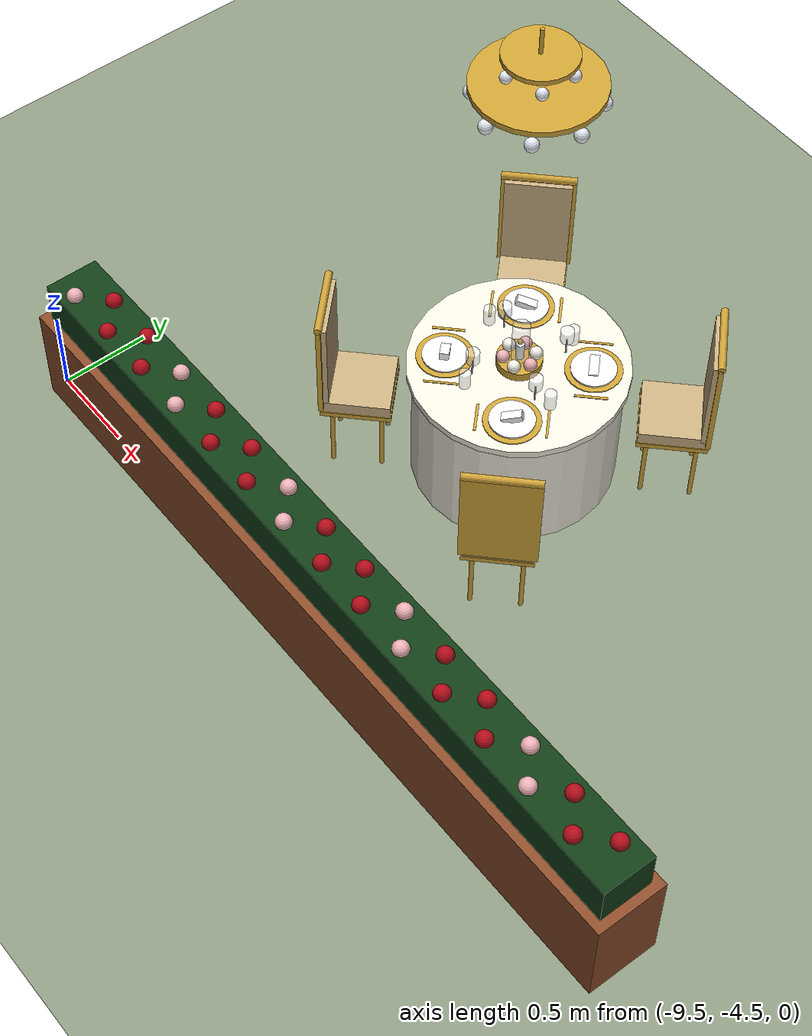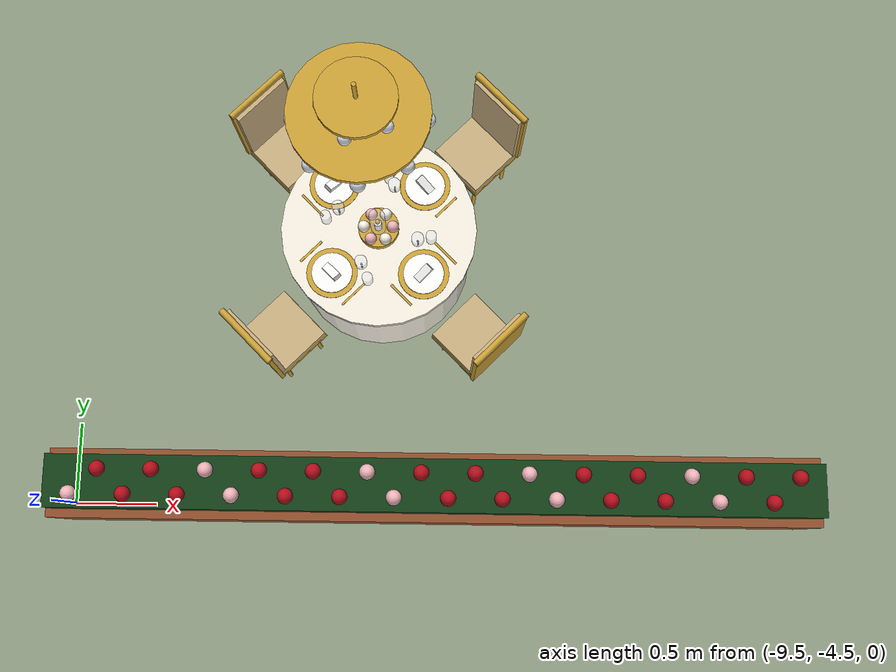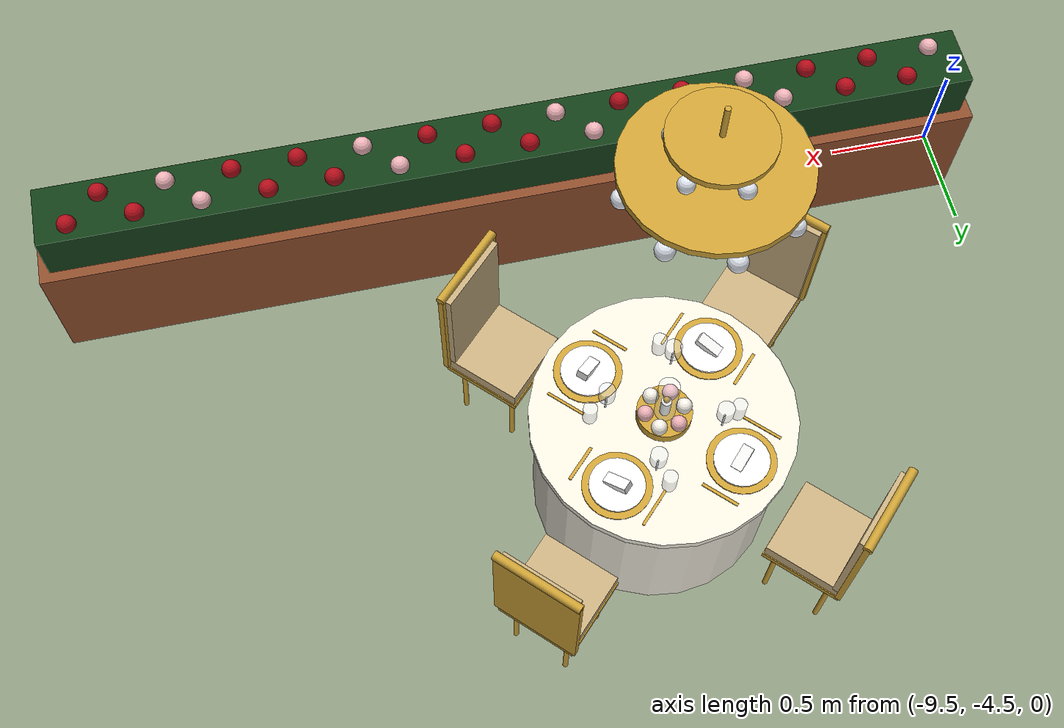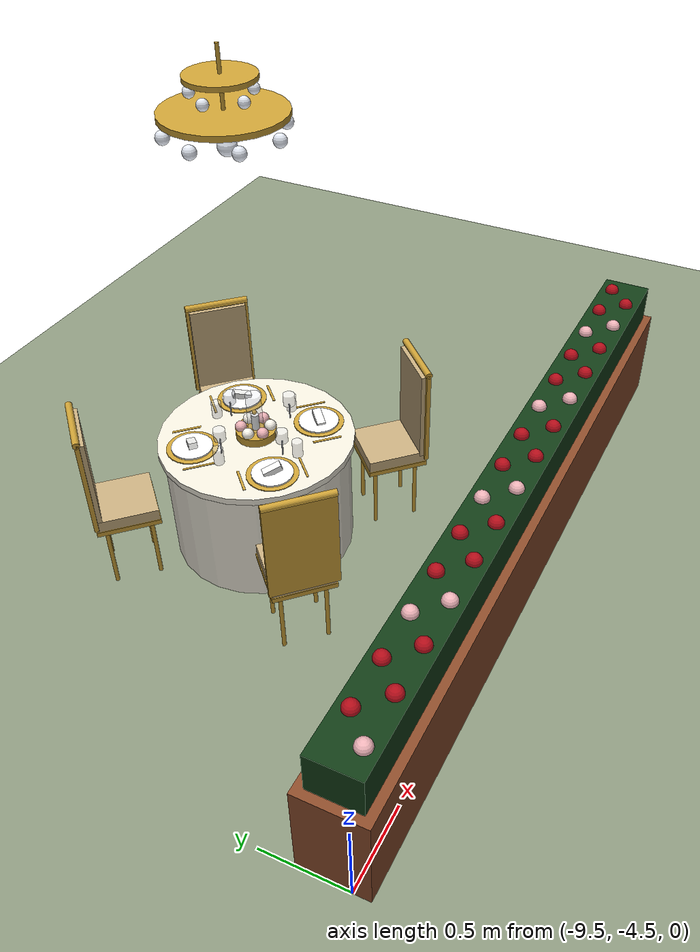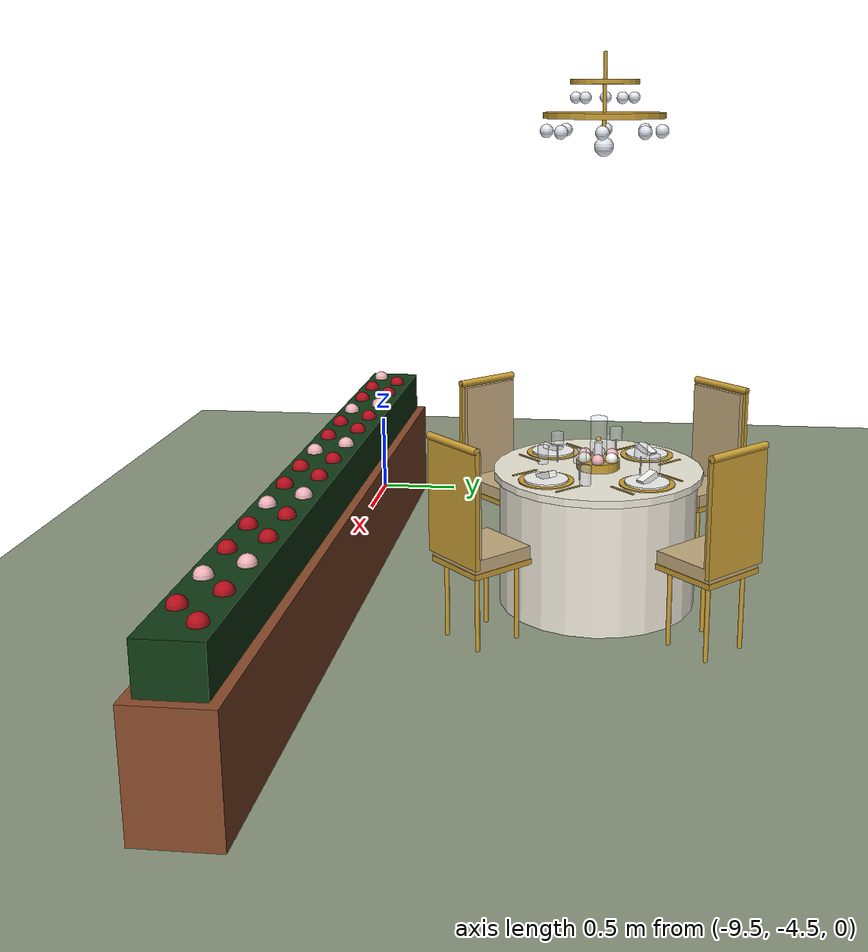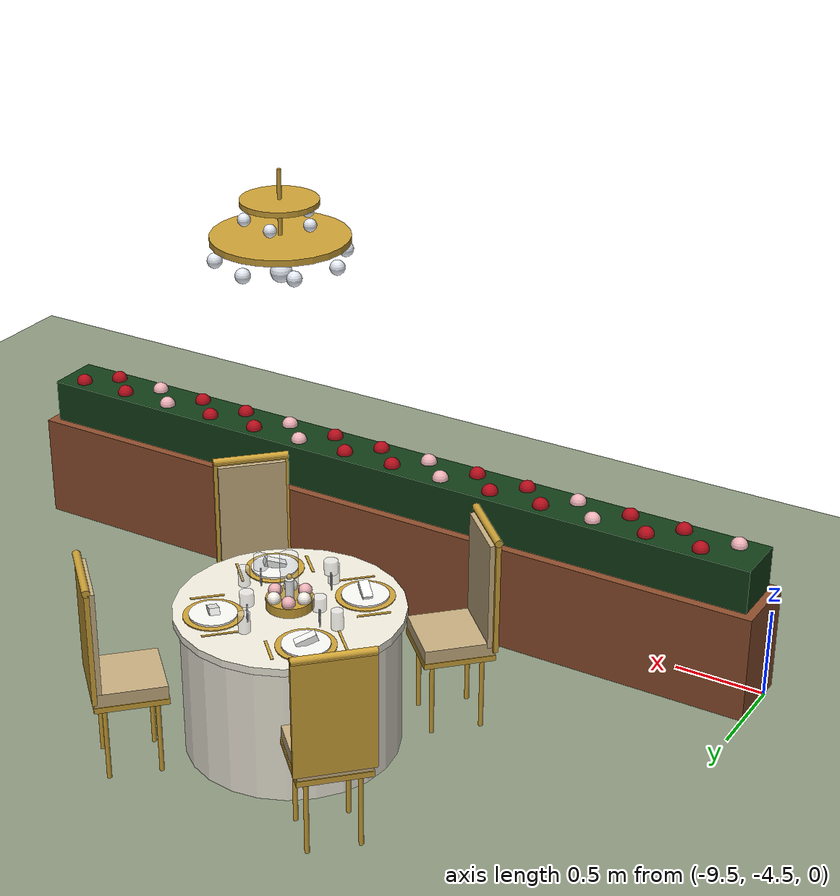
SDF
<sdf version="1.9">
 <world name="dar_tunibot">
  <model name="ground_plane">
   <static>true</static>
   <link name="link">
    <collision name="collision">
     <geometry><plane><normal>0 0 1</normal><size>60 60</size></plane></geometry>
    </collision>
    <visual name="visual">
     <geometry><plane><normal>0 0 1</normal><size>60 60</size></plane></geometry>
     <material><ambient>0.55 0.6 0.5 1</ambient><diffuse>0.55 0.6 0.5 1</diffuse></material>
    </visual>
   </link>
  </model>
  <model name="table_10">
   <static>true</static>
   <pose>-7.6 -2.9 0 0 0 0</pose>
   <link name="link">
    <visual name="cloth_v">
     <pose>0.000 0.000 0.370 0.0000 0.0000 0.0000</pose>
     <geometry><cylinder><radius>0.550</radius><length>0.740</length></cylinder></geometry>
     <material>
      <ambient>0.95 0.93 0.87 1</ambient>
      <diffuse>0.95 0.93 0.87 1</diffuse>
      <specular>0.1 0.1 0.1 1</specular>
     </material>
    </visual>
    <collision name="cloth_c">
     <pose>0.000 0.000 0.370 0.0000 0.0000 0.0000</pose>
     <geometry><cylinder><radius>0.550</radius><length>0.740</length></cylinder></geometry>
    </collision>
    <visual name="drape_v">
     <pose>0.000 0.000 0.750 0.0000 0.0000 0.0000</pose>
     <geometry><cylinder><radius>0.580</radius><length>0.040</length></cylinder></geometry>
     <material>
      <ambient>0.95 0.93 0.87 1</ambient>
      <diffuse>0.95 0.93 0.87 1</diffuse>
      <specular>0.1 0.1 0.1 1</specular>
     </material>
    </visual>
    <visual name="bowl_v">
     <pose>0.000 0.000 0.795 0.0000 0.0000 0.0000</pose>
     <geometry><cylinder><radius>0.120</radius><length>0.050</length></cylinder></geometry>
     <material>
      <ambient>0.8 0.63 0.21 1</ambient>
      <diffuse>0.8 0.63 0.21 1</diffuse>
      <specular>0.1 0.1 0.1 1</specular>
     </material>
    </visual>
    <visual name="bowl_foot_v">
     <pose>0.000 0.000 0.775 0.0000 0.0000 0.0000</pose>
     <geometry><cylinder><radius>0.060</radius><length>0.020</length></cylinder></geometry>
     <material>
      <ambient>0.8 0.63 0.21 1</ambient>
      <diffuse>0.8 0.63 0.21 1</diffuse>
      <specular>0.1 0.1 0.1 1</specular>
     </material>
    </visual>
    <visual name="candle_v">
     <pose>0.000 0.000 0.870 0.0000 0.0000 0.0000</pose>
     <geometry><cylinder><radius>0.022</radius><length>0.100</length></cylinder></geometry>
     <material>
      <ambient>0.98 0.98 0.97 1</ambient>
      <diffuse>0.98 0.98 0.97 1</diffuse>
      <specular>0.1 0.1 0.1 1</specular>
     </material>
    </visual>
    <visual name="flame_v">
     <pose>0.000 0.000 0.935 0.0000 0.0000 0.0000</pose>
     <geometry><sphere><radius>0.014</radius></sphere></geometry>
     <material>
      <ambient>0.8 0.63 0.21 1</ambient>
      <diffuse>0.8 0.63 0.21 1</diffuse>
      <specular>0.1 0.1 0.1 1</specular>
      <emissive>1.0 0.6 0.2 1</emissive>
     </material>
    </visual>
    <visual name="hurricane_v">
     <pose>0.000 0.000 0.940 0.0000 0.0000 0.0000</pose>
     <geometry><cylinder><radius>0.045</radius><length>0.240</length></cylinder></geometry>
     <transparency>0.75</transparency>
     <material>
      <ambient>0.9 0.92 0.96 1</ambient>
      <diffuse>0.9 0.92 0.96 1</diffuse>
      <specular>0.1 0.1 0.1 1</specular>
     </material>
    </visual>
    <visual name="rose0_v">
     <pose>0.085 0.000 0.835 0.0000 0.0000 0.0000</pose>
     <geometry><sphere><radius>0.035</radius></sphere></geometry>
     <material>
      <ambient>0.93 0.7 0.72 1</ambient>
      <diffuse>0.93 0.7 0.72 1</diffuse>
      <specular>0.1 0.1 0.1 1</specular>
     </material>
    </visual>
    <visual name="rose1_v">
     <pose>0.043 0.074 0.835 0.0000 0.0000 0.0000</pose>
     <geometry><sphere><radius>0.035</radius></sphere></geometry>
     <material>
      <ambient>0.97 0.95 0.91 1</ambient>
      <diffuse>0.97 0.95 0.91 1</diffuse>
      <specular>0.1 0.1 0.1 1</specular>
     </material>
    </visual>
    <visual name="rose2_v">
     <pose>-0.042 0.074 0.835 0.0000 0.0000 0.0000</pose>
     <geometry><sphere><radius>0.035</radius></sphere></geometry>
     <material>
      <ambient>0.93 0.7 0.72 1</ambient>
      <diffuse>0.93 0.7 0.72 1</diffuse>
      <specular>0.1 0.1 0.1 1</specular>
     </material>
    </visual>
    <visual name="rose3_v">
     <pose>-0.085 0.000 0.835 0.0000 0.0000 0.0000</pose>
     <geometry><sphere><radius>0.035</radius></sphere></geometry>
     <material>
      <ambient>0.97 0.95 0.91 1</ambient>
      <diffuse>0.97 0.95 0.91 1</diffuse>
      <specular>0.1 0.1 0.1 1</specular>
     </material>
    </visual>
    <visual name="rose4_v">
     <pose>-0.043 -0.074 0.835 0.0000 0.0000 0.0000</pose>
     <geometry><sphere><radius>0.035</radius></sphere></geometry>
     <material>
      <ambient>0.93 0.7 0.72 1</ambient>
      <diffuse>0.93 0.7 0.72 1</diffuse>
      <specular>0.1 0.1 0.1 1</specular>
     </material>
    </visual>
    <visual name="rose5_v">
     <pose>0.043 -0.074 0.835 0.0000 0.0000 0.0000</pose>
     <geometry><sphere><radius>0.035</radius></sphere></geometry>
     <material>
      <ambient>0.97 0.95 0.91 1</ambient>
      <diffuse>0.97 0.95 0.91 1</diffuse>
      <specular>0.1 0.1 0.1 1</specular>
     </material>
    </visual>
    <collision name="seat0_c">
     <pose>0.580 0.580 0.225 0.0000 0.0000 0.0000</pose>
     <geometry><box><size>0.400 0.400 0.450</size></box></geometry>
    </collision>
    <visual name="seat_frame0_v">
     <pose>0.580 0.580 0.430 0.0000 0.0000 0.7854</pose>
     <geometry><box><size>0.370 0.370 0.030</size></box></geometry>
     <material>
      <ambient>0.8 0.63 0.21 1</ambient>
      <diffuse>0.8 0.63 0.21 1</diffuse>
      <specular>0.1 0.1 0.1 1</specular>
     </material>
    </visual>
    <visual name="cushion0_v">
     <pose>0.580 0.580 0.480 0.0000 0.0000 0.7854</pose>
     <geometry><box><size>0.360 0.360 0.070</size></box></geometry>
     <material>
      <ambient>0.78 0.68 0.5 1</ambient>
      <diffuse>0.78 0.68 0.5 1</diffuse>
      <specular>0.1 0.1 0.1 1</specular>
     </material>
    </visual>
    <visual name="back_frame0_v">
     <pose>0.707 0.707 0.780 0.0000 0.0000 0.7854</pose>
     <geometry><box><size>0.025 0.400 0.620</size></box></geometry>
     <material>
      <ambient>0.8 0.63 0.21 1</ambient>
      <diffuse>0.8 0.63 0.21 1</diffuse>
      <specular>0.1 0.1 0.1 1</specular>
     </material>
    </visual>
    <visual name="back0_v">
     <pose>0.697 0.697 0.780 0.0000 0.0000 0.7854</pose>
     <geometry><box><size>0.050 0.360 0.580</size></box></geometry>
     <material>
      <ambient>0.78 0.68 0.5 1</ambient>
      <diffuse>0.78 0.68 0.5 1</diffuse>
      <specular>0.1 0.1 0.1 1</specular>
     </material>
    </visual>
    <visual name="back_top0_v">
     <pose>0.707 0.707 1.090 1.5708 0.0000 0.7854</pose>
     <geometry><cylinder><radius>0.020</radius><length>0.400</length></cylinder></geometry>
     <material>
      <ambient>0.8 0.63 0.21 1</ambient>
      <diffuse>0.8 0.63 0.21 1</diffuse>
      <specular>0.1 0.1 0.1 1</specular>
     </material>
    </visual>
    <visual name="leg0_0_v">
     <pose>0.580 0.396 0.210 0.0000 0.0000 0.7854</pose>
     <geometry><cylinder><radius>0.012</radius><length>0.420</length></cylinder></geometry>
     <material>
      <ambient>0.8 0.63 0.21 1</ambient>
      <diffuse>0.8 0.63 0.21 1</diffuse>
      <specular>0.1 0.1 0.1 1</specular>
     </material>
    </visual>
    <visual name="leg0_1_v">
     <pose>0.396 0.580 0.210 0.0000 0.0000 0.7854</pose>
     <geometry><cylinder><radius>0.012</radius><length>0.420</length></cylinder></geometry>
     <material>
      <ambient>0.8 0.63 0.21 1</ambient>
      <diffuse>0.8 0.63 0.21 1</diffuse>
      <specular>0.1 0.1 0.1 1</specular>
     </material>
    </visual>
    <visual name="leg0_2_v">
     <pose>0.764 0.580 0.210 0.0000 0.0000 0.7854</pose>
     <geometry><cylinder><radius>0.012</radius><length>0.420</length></cylinder></geometry>
     <material>
      <ambient>0.8 0.63 0.21 1</ambient>
      <diffuse>0.8 0.63 0.21 1</diffuse>
      <specular>0.1 0.1 0.1 1</specular>
     </material>
    </visual>
    <visual name="leg0_3_v">
     <pose>0.580 0.764 0.210 0.0000 0.0000 0.7854</pose>
     <geometry><cylinder><radius>0.012</radius><length>0.420</length></cylinder></geometry>
     <material>
      <ambient>0.8 0.63 0.21 1</ambient>
      <diffuse>0.8 0.63 0.21 1</diffuse>
      <specular>0.1 0.1 0.1 1</specular>
     </material>
    </visual>
    <visual name="charger0_v">
     <pose>0.269 0.269 0.773 0.0000 0.0000 0.7854</pose>
     <geometry><cylinder><radius>0.150</radius><length>0.006</length></cylinder></geometry>
     <material>
      <ambient>0.8 0.63 0.21 1</ambient>
      <diffuse>0.8 0.63 0.21 1</diffuse>
      <specular>0.1 0.1 0.1 1</specular>
     </material>
    </visual>
    <visual name="plate0_v">
     <pose>0.269 0.269 0.781 0.0000 0.0000 0.7854</pose>
     <geometry><cylinder><radius>0.120</radius><length>0.010</length></cylinder></geometry>
     <material>
      <ambient>0.98 0.98 0.97 1</ambient>
      <diffuse>0.98 0.98 0.97 1</diffuse>
      <specular>0.1 0.1 0.1 1</specular>
     </material>
    </visual>
    <visual name="napkin0_v">
     <pose>0.269 0.269 0.803 0.3500 0.0000 0.7854</pose>
     <geometry><box><size>0.050 0.110 0.035</size></box></geometry>
     <material>
      <ambient>0.98 0.98 0.97 1</ambient>
      <diffuse>0.98 0.98 0.97 1</diffuse>
      <specular>0.1 0.1 0.1 1</specular>
     </material>
    </visual>
    <visual name="fork0_v">
     <pose>0.396 0.141 0.772 0.0000 0.0000 0.7854</pose>
     <geometry><box><size>0.170 0.014 0.004</size></box></geometry>
     <material>
      <ambient>0.8 0.63 0.21 1</ambient>
      <diffuse>0.8 0.63 0.21 1</diffuse>
      <specular>0.1 0.1 0.1 1</specular>
     </material>
    </visual>
    <visual name="knife0_v">
     <pose>0.141 0.396 0.772 0.0000 0.0000 0.7854</pose>
     <geometry><box><size>0.180 0.012 0.004</size></box></geometry>
     <material>
      <ambient>0.8 0.63 0.21 1</ambient>
      <diffuse>0.8 0.63 0.21 1</diffuse>
      <specular>0.1 0.1 0.1 1</specular>
     </material>
    </visual>
    <visual name="wine_stem0_v">
     <pose>0.092 0.233 0.820 0.0000 0.0000 0.7854</pose>
     <geometry><cylinder><radius>0.004</radius><length>0.100</length></cylinder></geometry>
     <material>
      <ambient>0.9 0.92 0.96 1</ambient>
      <diffuse>0.9 0.92 0.96 1</diffuse>
      <specular>0.1 0.1 0.1 1</specular>
     </material>
    </visual>
    <visual name="wine_bowl0_v">
     <pose>0.092 0.233 0.905 0.0000 0.0000 0.7854</pose>
     <geometry><cylinder><radius>0.035</radius><length>0.070</length></cylinder></geometry>
     <transparency>0.6</transparency>
     <material>
      <ambient>0.9 0.92 0.96 1</ambient>
      <diffuse>0.9 0.92 0.96 1</diffuse>
      <specular>0.1 0.1 0.1 1</specular>
     </material>
    </visual>
    <visual name="water0_v">
     <pose>0.057 0.311 0.820 0.0000 0.0000 0.7854</pose>
     <geometry><cylinder><radius>0.030</radius><length>0.100</length></cylinder></geometry>
     <transparency>0.6</transparency>
     <material>
      <ambient>0.9 0.92 0.96 1</ambient>
      <diffuse>0.9 0.92 0.96 1</diffuse>
      <specular>0.1 0.1 0.1 1</specular>
     </material>
    </visual>
    <collision name="seat1_c">
     <pose>-0.580 0.580 0.225 0.0000 0.0000 0.0000</pose>
     <geometry><box><size>0.400 0.400 0.450</size></box></geometry>
    </collision>
    <visual name="seat_frame1_v">
     <pose>-0.580 0.580 0.430 0.0000 0.0000 2.3562</pose>
     <geometry><box><size>0.370 0.370 0.030</size></box></geometry>
     <material>
      <ambient>0.8 0.63 0.21 1</ambient>
      <diffuse>0.8 0.63 0.21 1</diffuse>
      <specular>0.1 0.1 0.1 1</specular>
     </material>
    </visual>
    <visual name="cushion1_v">
     <pose>-0.580 0.580 0.480 0.0000 0.0000 2.3562</pose>
     <geometry><box><size>0.360 0.360 0.070</size></box></geometry>
     <material>
      <ambient>0.78 0.68 0.5 1</ambient>
      <diffuse>0.78 0.68 0.5 1</diffuse>
      <specular>0.1 0.1 0.1 1</specular>
     </material>
    </visual>
    <visual name="back_frame1_v">
     <pose>-0.707 0.707 0.780 0.0000 0.0000 2.3562</pose>
     <geometry><box><size>0.025 0.400 0.620</size></box></geometry>
     <material>
      <ambient>0.8 0.63 0.21 1</ambient>
      <diffuse>0.8 0.63 0.21 1</diffuse>
      <specular>0.1 0.1 0.1 1</specular>
     </material>
    </visual>
    <visual name="back1_v">
     <pose>-0.697 0.697 0.780 0.0000 0.0000 2.3562</pose>
     <geometry><box><size>0.050 0.360 0.580</size></box></geometry>
     <material>
      <ambient>0.78 0.68 0.5 1</ambient>
      <diffuse>0.78 0.68 0.5 1</diffuse>
      <specular>0.1 0.1 0.1 1</specular>
     </material>
    </visual>
    <visual name="back_top1_v">
     <pose>-0.707 0.707 1.090 1.5708 0.0000 2.3562</pose>
     <geometry><cylinder><radius>0.020</radius><length>0.400</length></cylinder></geometry>
     <material>
      <ambient>0.8 0.63 0.21 1</ambient>
      <diffuse>0.8 0.63 0.21 1</diffuse>
      <specular>0.1 0.1 0.1 1</specular>
     </material>
    </visual>
    <visual name="leg1_0_v">
     <pose>-0.396 0.580 0.210 0.0000 0.0000 2.3562</pose>
     <geometry><cylinder><radius>0.012</radius><length>0.420</length></cylinder></geometry>
     <material>
      <ambient>0.8 0.63 0.21 1</ambient>
      <diffuse>0.8 0.63 0.21 1</diffuse>
      <specular>0.1 0.1 0.1 1</specular>
     </material>
    </visual>
    <visual name="leg1_1_v">
     <pose>-0.580 0.396 0.210 0.0000 0.0000 2.3562</pose>
     <geometry><cylinder><radius>0.012</radius><length>0.420</length></cylinder></geometry>
     <material>
      <ambient>0.8 0.63 0.21 1</ambient>
      <diffuse>0.8 0.63 0.21 1</diffuse>
      <specular>0.1 0.1 0.1 1</specular>
     </material>
    </visual>
    <visual name="leg1_2_v">
     <pose>-0.580 0.764 0.210 0.0000 0.0000 2.3562</pose>
     <geometry><cylinder><radius>0.012</radius><length>0.420</length></cylinder></geometry>
     <material>
      <ambient>0.8 0.63 0.21 1</ambient>
      <diffuse>0.8 0.63 0.21 1</diffuse>
      <specular>0.1 0.1 0.1 1</specular>
     </material>
    </visual>
    <visual name="leg1_3_v">
     <pose>-0.764 0.580 0.210 0.0000 0.0000 2.3562</pose>
     <geometry><cylinder><radius>0.012</radius><length>0.420</length></cylinder></geometry>
     <material>
      <ambient>0.8 0.63 0.21 1</ambient>
      <diffuse>0.8 0.63 0.21 1</diffuse>
      <specular>0.1 0.1 0.1 1</specular>
     </material>
    </visual>
    <visual name="charger1_v">
     <pose>-0.269 0.269 0.773 0.0000 0.0000 2.3562</pose>
     <geometry><cylinder><radius>0.150</radius><length>0.006</length></cylinder></geometry>
     <material>
      <ambient>0.8 0.63 0.21 1</ambient>
      <diffuse>0.8 0.63 0.21 1</diffuse>
      <specular>0.1 0.1 0.1 1</specular>
     </material>
    </visual>
    <visual name="plate1_v">
     <pose>-0.269 0.269 0.781 0.0000 0.0000 2.3562</pose>
     <geometry><cylinder><radius>0.120</radius><length>0.010</length></cylinder></geometry>
     <material>
      <ambient>0.98 0.98 0.97 1</ambient>
      <diffuse>0.98 0.98 0.97 1</diffuse>
      <specular>0.1 0.1 0.1 1</specular>
     </material>
    </visual>
    <visual name="napkin1_v">
     <pose>-0.269 0.269 0.803 0.3500 0.0000 2.3562</pose>
     <geometry><box><size>0.050 0.110 0.035</size></box></geometry>
     <material>
      <ambient>0.98 0.98 0.97 1</ambient>
      <diffuse>0.98 0.98 0.97 1</diffuse>
      <specular>0.1 0.1 0.1 1</specular>
     </material>
    </visual>
    <visual name="fork1_v">
     <pose>-0.141 0.396 0.772 0.0000 0.0000 2.3562</pose>
     <geometry><box><size>0.170 0.014 0.004</size></box></geometry>
     <material>
      <ambient>0.8 0.63 0.21 1</ambient>
      <diffuse>0.8 0.63 0.21 1</diffuse>
      <specular>0.1 0.1 0.1 1</specular>
     </material>
    </visual>
    <visual name="knife1_v">
     <pose>-0.396 0.141 0.772 0.0000 0.0000 2.3562</pose>
     <geometry><box><size>0.180 0.012 0.004</size></box></geometry>
     <material>
      <ambient>0.8 0.63 0.21 1</ambient>
      <diffuse>0.8 0.63 0.21 1</diffuse>
      <specular>0.1 0.1 0.1 1</specular>
     </material>
    </visual>
    <visual name="wine_stem1_v">
     <pose>-0.233 0.092 0.820 0.0000 0.0000 2.3562</pose>
     <geometry><cylinder><radius>0.004</radius><length>0.100</length></cylinder></geometry>
     <material>
      <ambient>0.9 0.92 0.96 1</ambient>
      <diffuse>0.9 0.92 0.96 1</diffuse>
      <specular>0.1 0.1 0.1 1</specular>
     </material>
    </visual>
    <visual name="wine_bowl1_v">
     <pose>-0.233 0.092 0.905 0.0000 0.0000 2.3562</pose>
     <geometry><cylinder><radius>0.035</radius><length>0.070</length></cylinder></geometry>
     <transparency>0.6</transparency>
     <material>
      <ambient>0.9 0.92 0.96 1</ambient>
      <diffuse>0.9 0.92 0.96 1</diffuse>
      <specular>0.1 0.1 0.1 1</specular>
     </material>
    </visual>
    <visual name="water1_v">
     <pose>-0.311 0.057 0.820 0.0000 0.0000 2.3562</pose>
     <geometry><cylinder><radius>0.030</radius><length>0.100</length></cylinder></geometry>
     <transparency>0.6</transparency>
     <material>
      <ambient>0.9 0.92 0.96 1</ambient>
      <diffuse>0.9 0.92 0.96 1</diffuse>
      <specular>0.1 0.1 0.1 1</specular>
     </material>
    </visual>
    <collision name="seat2_c">
     <pose>-0.580 -0.580 0.225 0.0000 0.0000 0.0000</pose>
     <geometry><box><size>0.400 0.400 0.450</size></box></geometry>
    </collision>
    <visual name="seat_frame2_v">
     <pose>-0.580 -0.580 0.430 0.0000 0.0000 3.9270</pose>
     <geometry><box><size>0.370 0.370 0.030</size></box></geometry>
     <material>
      <ambient>0.8 0.63 0.21 1</ambient>
      <diffuse>0.8 0.63 0.21 1</diffuse>
      <specular>0.1 0.1 0.1 1</specular>
     </material>
    </visual>
    <visual name="cushion2_v">
     <pose>-0.580 -0.580 0.480 0.0000 0.0000 3.9270</pose>
     <geometry><box><size>0.360 0.360 0.070</size></box></geometry>
     <material>
      <ambient>0.78 0.68 0.5 1</ambient>
      <diffuse>0.78 0.68 0.5 1</diffuse>
      <specular>0.1 0.1 0.1 1</specular>
     </material>
    </visual>
    <visual name="back_frame2_v">
     <pose>-0.707 -0.707 0.780 0.0000 0.0000 3.9270</pose>
     <geometry><box><size>0.025 0.400 0.620</size></box></geometry>
     <material>
      <ambient>0.8 0.63 0.21 1</ambient>
      <diffuse>0.8 0.63 0.21 1</diffuse>
      <specular>0.1 0.1 0.1 1</specular>
     </material>
    </visual>
    <visual name="back2_v">
     <pose>-0.697 -0.697 0.780 0.0000 0.0000 3.9270</pose>
     <geometry><box><size>0.050 0.360 0.580</size></box></geometry>
     <material>
      <ambient>0.78 0.68 0.5 1</ambient>
      <diffuse>0.78 0.68 0.5 1</diffuse>
      <specular>0.1 0.1 0.1 1</specular>
     </material>
    </visual>
    <visual name="back_top2_v">
     <pose>-0.707 -0.707 1.090 1.5708 0.0000 3.9270</pose>
     <geometry><cylinder><radius>0.020</radius><length>0.400</length></cylinder></geometry>
     <material>
      <ambient>0.8 0.63 0.21 1</ambient>
      <diffuse>0.8 0.63 0.21 1</diffuse>
      <specular>0.1 0.1 0.1 1</specular>
     </material>
    </visual>
    <visual name="leg2_0_v">
     <pose>-0.580 -0.396 0.210 0.0000 0.0000 3.9270</pose>
     <geometry><cylinder><radius>0.012</radius><length>0.420</length></cylinder></geometry>
     <material>
      <ambient>0.8 0.63 0.21 1</ambient>
      <diffuse>0.8 0.63 0.21 1</diffuse>
      <specular>0.1 0.1 0.1 1</specular>
     </material>
    </visual>
    <visual name="leg2_1_v">
     <pose>-0.396 -0.580 0.210 0.0000 0.0000 3.9270</pose>
     <geometry><cylinder><radius>0.012</radius><length>0.420</length></cylinder></geometry>
     <material>
      <ambient>0.8 0.63 0.21 1</ambient>
      <diffuse>0.8 0.63 0.21 1</diffuse>
      <specular>0.1 0.1 0.1 1</specular>
     </material>
    </visual>
    <visual name="leg2_2_v">
     <pose>-0.764 -0.580 0.210 0.0000 0.0000 3.9270</pose>
     <geometry><cylinder><radius>0.012</radius><length>0.420</length></cylinder></geometry>
     <material>
      <ambient>0.8 0.63 0.21 1</ambient>
      <diffuse>0.8 0.63 0.21 1</diffuse>
      <specular>0.1 0.1 0.1 1</specular>
     </material>
    </visual>
    <visual name="leg2_3_v">
     <pose>-0.580 -0.764 0.210 0.0000 0.0000 3.9270</pose>
     <geometry><cylinder><radius>0.012</radius><length>0.420</length></cylinder></geometry>
     <material>
      <ambient>0.8 0.63 0.21 1</ambient>
      <diffuse>0.8 0.63 0.21 1</diffuse>
      <specular>0.1 0.1 0.1 1</specular>
     </material>
    </visual>
    <visual name="charger2_v">
     <pose>-0.269 -0.269 0.773 0.0000 0.0000 3.9270</pose>
     <geometry><cylinder><radius>0.150</radius><length>0.006</length></cylinder></geometry>
     <material>
      <ambient>0.8 0.63 0.21 1</ambient>
      <diffuse>0.8 0.63 0.21 1</diffuse>
      <specular>0.1 0.1 0.1 1</specular>
     </material>
    </visual>
    <visual name="plate2_v">
     <pose>-0.269 -0.269 0.781 0.0000 0.0000 3.9270</pose>
     <geometry><cylinder><radius>0.120</radius><length>0.010</length></cylinder></geometry>
     <material>
      <ambient>0.98 0.98 0.97 1</ambient>
      <diffuse>0.98 0.98 0.97 1</diffuse>
      <specular>0.1 0.1 0.1 1</specular>
     </material>
    </visual>
    <visual name="napkin2_v">
     <pose>-0.269 -0.269 0.803 0.3500 0.0000 3.9270</pose>
     <geometry><box><size>0.050 0.110 0.035</size></box></geometry>
     <material>
      <ambient>0.98 0.98 0.97 1</ambient>
      <diffuse>0.98 0.98 0.97 1</diffuse>
      <specular>0.1 0.1 0.1 1</specular>
     </material>
    </visual>
    <visual name="fork2_v">
     <pose>-0.396 -0.141 0.772 0.0000 0.0000 3.9270</pose>
     <geometry><box><size>0.170 0.014 0.004</size></box></geometry>
     <material>
      <ambient>0.8 0.63 0.21 1</ambient>
      <diffuse>0.8 0.63 0.21 1</diffuse>
      <specular>0.1 0.1 0.1 1</specular>
     </material>
    </visual>
    <visual name="knife2_v">
     <pose>-0.141 -0.396 0.772 0.0000 0.0000 3.9270</pose>
     <geometry><box><size>0.180 0.012 0.004</size></box></geometry>
     <material>
      <ambient>0.8 0.63 0.21 1</ambient>
      <diffuse>0.8 0.63 0.21 1</diffuse>
      <specular>0.1 0.1 0.1 1</specular>
     </material>
    </visual>
    <visual name="wine_stem2_v">
     <pose>-0.092 -0.233 0.820 0.0000 0.0000 3.9270</pose>
     <geometry><cylinder><radius>0.004</radius><length>0.100</length></cylinder></geometry>
     <material>
      <ambient>0.9 0.92 0.96 1</ambient>
      <diffuse>0.9 0.92 0.96 1</diffuse>
      <specular>0.1 0.1 0.1 1</specular>
     </material>
    </visual>
    <visual name="wine_bowl2_v">
     <pose>-0.092 -0.233 0.905 0.0000 0.0000 3.9270</pose>
     <geometry><cylinder><radius>0.035</radius><length>0.070</length></cylinder></geometry>
     <transparency>0.6</transparency>
     <material>
      <ambient>0.9 0.92 0.96 1</ambient>
      <diffuse>0.9 0.92 0.96 1</diffuse>
      <specular>0.1 0.1 0.1 1</specular>
     </material>
    </visual>
    <visual name="water2_v">
     <pose>-0.057 -0.311 0.820 0.0000 0.0000 3.9270</pose>
     <geometry><cylinder><radius>0.030</radius><length>0.100</length></cylinder></geometry>
     <transparency>0.6</transparency>
     <material>
      <ambient>0.9 0.92 0.96 1</ambient>
      <diffuse>0.9 0.92 0.96 1</diffuse>
      <specular>0.1 0.1 0.1 1</specular>
     </material>
    </visual>
    <collision name="seat3_c">
     <pose>0.580 -0.580 0.225 0.0000 0.0000 0.0000</pose>
     <geometry><box><size>0.400 0.400 0.450</size></box></geometry>
    </collision>
    <visual name="seat_frame3_v">
     <pose>0.580 -0.580 0.430 0.0000 0.0000 5.4978</pose>
     <geometry><box><size>0.370 0.370 0.030</size></box></geometry>
     <material>
      <ambient>0.8 0.63 0.21 1</ambient>
      <diffuse>0.8 0.63 0.21 1</diffuse>
      <specular>0.1 0.1 0.1 1</specular>
     </material>
    </visual>
    <visual name="cushion3_v">
     <pose>0.580 -0.580 0.480 0.0000 0.0000 5.4978</pose>
     <geometry><box><size>0.360 0.360 0.070</size></box></geometry>
     <material>
      <ambient>0.78 0.68 0.5 1</ambient>
      <diffuse>0.78 0.68 0.5 1</diffuse>
      <specular>0.1 0.1 0.1 1</specular>
     </material>
    </visual>
    <visual name="back_frame3_v">
     <pose>0.707 -0.707 0.780 0.0000 0.0000 5.4978</pose>
     <geometry><box><size>0.025 0.400 0.620</size></box></geometry>
     <material>
      <ambient>0.8 0.63 0.21 1</ambient>
      <diffuse>0.8 0.63 0.21 1</diffuse>
      <specular>0.1 0.1 0.1 1</specular>
     </material>
    </visual>
    <visual name="back3_v">
     <pose>0.697 -0.697 0.780 0.0000 0.0000 5.4978</pose>
     <geometry><box><size>0.050 0.360 0.580</size></box></geometry>
     <material>
      <ambient>0.78 0.68 0.5 1</ambient>
      <diffuse>0.78 0.68 0.5 1</diffuse>
      <specular>0.1 0.1 0.1 1</specular>
     </material>
    </visual>
    <visual name="back_top3_v">
     <pose>0.707 -0.707 1.090 1.5708 0.0000 5.4978</pose>
     <geometry><cylinder><radius>0.020</radius><length>0.400</length></cylinder></geometry>
     <material>
      <ambient>0.8 0.63 0.21 1</ambient>
      <diffuse>0.8 0.63 0.21 1</diffuse>
      <specular>0.1 0.1 0.1 1</specular>
     </material>
    </visual>
    <visual name="leg3_0_v">
     <pose>0.396 -0.580 0.210 0.0000 0.0000 5.4978</pose>
     <geometry><cylinder><radius>0.012</radius><length>0.420</length></cylinder></geometry>
     <material>
      <ambient>0.8 0.63 0.21 1</ambient>
      <diffuse>0.8 0.63 0.21 1</diffuse>
      <specular>0.1 0.1 0.1 1</specular>
     </material>
    </visual>
    <visual name="leg3_1_v">
     <pose>0.580 -0.396 0.210 0.0000 0.0000 5.4978</pose>
     <geometry><cylinder><radius>0.012</radius><length>0.420</length></cylinder></geometry>
     <material>
      <ambient>0.8 0.63 0.21 1</ambient>
      <diffuse>0.8 0.63 0.21 1</diffuse>
      <specular>0.1 0.1 0.1 1</specular>
     </material>
    </visual>
    <visual name="leg3_2_v">
     <pose>0.580 -0.764 0.210 0.0000 0.0000 5.4978</pose>
     <geometry><cylinder><radius>0.012</radius><length>0.420</length></cylinder></geometry>
     <material>
      <ambient>0.8 0.63 0.21 1</ambient>
      <diffuse>0.8 0.63 0.21 1</diffuse>
      <specular>0.1 0.1 0.1 1</specular>
     </material>
    </visual>
    <visual name="leg3_3_v">
     <pose>0.764 -0.580 0.210 0.0000 0.0000 5.4978</pose>
     <geometry><cylinder><radius>0.012</radius><length>0.420</length></cylinder></geometry>
     <material>
      <ambient>0.8 0.63 0.21 1</ambient>
      <diffuse>0.8 0.63 0.21 1</diffuse>
      <specular>0.1 0.1 0.1 1</specular>
     </material>
    </visual>
    <visual name="charger3_v">
     <pose>0.269 -0.269 0.773 0.0000 0.0000 5.4978</pose>
     <geometry><cylinder><radius>0.150</radius><length>0.006</length></cylinder></geometry>
     <material>
      <ambient>0.8 0.63 0.21 1</ambient>
      <diffuse>0.8 0.63 0.21 1</diffuse>
      <specular>0.1 0.1 0.1 1</specular>
     </material>
    </visual>
    <visual name="plate3_v">
     <pose>0.269 -0.269 0.781 0.0000 0.0000 5.4978</pose>
     <geometry><cylinder><radius>0.120</radius><length>0.010</length></cylinder></geometry>
     <material>
      <ambient>0.98 0.98 0.97 1</ambient>
      <diffuse>0.98 0.98 0.97 1</diffuse>
      <specular>0.1 0.1 0.1 1</specular>
     </material>
    </visual>
    <visual name="napkin3_v">
     <pose>0.269 -0.269 0.803 0.3500 0.0000 5.4978</pose>
     <geometry><box><size>0.050 0.110 0.035</size></box></geometry>
     <material>
      <ambient>0.98 0.98 0.97 1</ambient>
      <diffuse>0.98 0.98 0.97 1</diffuse>
      <specular>0.1 0.1 0.1 1</specular>
     </material>
    </visual>
    <visual name="fork3_v">
     <pose>0.141 -0.396 0.772 0.0000 0.0000 5.4978</pose>
     <geometry><box><size>0.170 0.014 0.004</size></box></geometry>
     <material>
      <ambient>0.8 0.63 0.21 1</ambient>
      <diffuse>0.8 0.63 0.21 1</diffuse>
      <specular>0.1 0.1 0.1 1</specular>
     </material>
    </visual>
    <visual name="knife3_v">
     <pose>0.396 -0.141 0.772 0.0000 0.0000 5.4978</pose>
     <geometry><box><size>0.180 0.012 0.004</size></box></geometry>
     <material>
      <ambient>0.8 0.63 0.21 1</ambient>
      <diffuse>0.8 0.63 0.21 1</diffuse>
      <specular>0.1 0.1 0.1 1</specular>
     </material>
    </visual>
    <visual name="wine_stem3_v">
     <pose>0.233 -0.092 0.820 0.0000 0.0000 5.4978</pose>
     <geometry><cylinder><radius>0.004</radius><length>0.100</length></cylinder></geometry>
     <material>
      <ambient>0.9 0.92 0.96 1</ambient>
      <diffuse>0.9 0.92 0.96 1</diffuse>
      <specular>0.1 0.1 0.1 1</specular>
     </material>
    </visual>
    <visual name="wine_bowl3_v">
     <pose>0.233 -0.092 0.905 0.0000 0.0000 5.4978</pose>
     <geometry><cylinder><radius>0.035</radius><length>0.070</length></cylinder></geometry>
     <transparency>0.6</transparency>
     <material>
      <ambient>0.9 0.92 0.96 1</ambient>
      <diffuse>0.9 0.92 0.96 1</diffuse>
      <specular>0.1 0.1 0.1 1</specular>
     </material>
    </visual>
    <visual name="water3_v">
     <pose>0.311 -0.057 0.820 0.0000 0.0000 5.4978</pose>
     <geometry><cylinder><radius>0.030</radius><length>0.100</length></cylinder></geometry>
     <transparency>0.6</transparency>
     <material>
      <ambient>0.9 0.92 0.96 1</ambient>
      <diffuse>0.9 0.92 0.96 1</diffuse>
      <specular>0.1 0.1 0.1 1</specular>
     </material>
    </visual>
    <visual name="chand_rod_v">
     <pose>0.000 0.000 2.750 0.0000 0.0000 0.0000</pose>
     <geometry><cylinder><radius>0.010</radius><length>0.500</length></cylinder></geometry>
     <material>
      <ambient>0.8 0.63 0.21 1</ambient>
      <diffuse>0.8 0.63 0.21 1</diffuse>
      <specular>0.1 0.1 0.1 1</specular>
     </material>
    </visual>
    <visual name="chand_ring_v">
     <pose>0.000 0.000 2.680 0.0000 0.0000 0.0000</pose>
     <geometry><cylinder><radius>0.320</radius><length>0.030</length></cylinder></geometry>
     <material>
      <ambient>0.8 0.63 0.21 1</ambient>
      <diffuse>0.8 0.63 0.21 1</diffuse>
      <specular>0.1 0.1 0.1 1</specular>
     </material>
    </visual>
    <visual name="chand_ring_top_v">
     <pose>0.000 0.000 2.850 0.0000 0.0000 0.0000</pose>
     <geometry><cylinder><radius>0.180</radius><length>0.025</length></cylinder></geometry>
     <material>
      <ambient>0.8 0.63 0.21 1</ambient>
      <diffuse>0.8 0.63 0.21 1</diffuse>
      <specular>0.1 0.1 0.1 1</specular>
     </material>
    </visual>
    <visual name="chand_drop_v">
     <pose>0.000 0.000 2.520 0.0000 0.0000 0.0000</pose>
     <geometry><sphere><radius>0.050</radius></sphere></geometry>
     <material>
      <ambient>0.9 0.92 0.96 1</ambient>
      <diffuse>0.9 0.92 0.96 1</diffuse>
      <specular>0.1 0.1 0.1 1</specular>
      <emissive>0.55 0.52 0.45 1</emissive>
     </material>
    </visual>
    <visual name="crystal0_0_v">
     <pose>0.300 0.000 2.600 0.0000 0.0000 0.0000</pose>
     <geometry><sphere><radius>0.035</radius></sphere></geometry>
     <material>
      <ambient>0.9 0.92 0.96 1</ambient>
      <diffuse>0.9 0.92 0.96 1</diffuse>
      <specular>0.1 0.1 0.1 1</specular>
      <emissive>0.55 0.52 0.45 1</emissive>
     </material>
    </visual>
    <visual name="crystal0_1_v">
     <pose>0.212 0.212 2.600 0.0000 0.0000 0.0000</pose>
     <geometry><sphere><radius>0.035</radius></sphere></geometry>
     <material>
      <ambient>0.9 0.92 0.96 1</ambient>
      <diffuse>0.9 0.92 0.96 1</diffuse>
      <specular>0.1 0.1 0.1 1</specular>
      <emissive>0.55 0.52 0.45 1</emissive>
     </material>
    </visual>
    <visual name="crystal0_2_v">
     <pose>0.000 0.300 2.600 0.0000 0.0000 0.0000</pose>
     <geometry><sphere><radius>0.035</radius></sphere></geometry>
     <material>
      <ambient>0.9 0.92 0.96 1</ambient>
      <diffuse>0.9 0.92 0.96 1</diffuse>
      <specular>0.1 0.1 0.1 1</specular>
      <emissive>0.55 0.52 0.45 1</emissive>
     </material>
    </visual>
    <visual name="crystal0_3_v">
     <pose>-0.212 0.212 2.600 0.0000 0.0000 0.0000</pose>
     <geometry><sphere><radius>0.035</radius></sphere></geometry>
     <material>
      <ambient>0.9 0.92 0.96 1</ambient>
      <diffuse>0.9 0.92 0.96 1</diffuse>
      <specular>0.1 0.1 0.1 1</specular>
      <emissive>0.55 0.52 0.45 1</emissive>
     </material>
    </visual>
    <visual name="crystal0_4_v">
     <pose>-0.300 0.000 2.600 0.0000 0.0000 0.0000</pose>
     <geometry><sphere><radius>0.035</radius></sphere></geometry>
     <material>
      <ambient>0.9 0.92 0.96 1</ambient>
      <diffuse>0.9 0.92 0.96 1</diffuse>
      <specular>0.1 0.1 0.1 1</specular>
      <emissive>0.55 0.52 0.45 1</emissive>
     </material>
    </visual>
    <visual name="crystal0_5_v">
     <pose>-0.212 -0.212 2.600 0.0000 0.0000 0.0000</pose>
     <geometry><sphere><radius>0.035</radius></sphere></geometry>
     <material>
      <ambient>0.9 0.92 0.96 1</ambient>
      <diffuse>0.9 0.92 0.96 1</diffuse>
      <specular>0.1 0.1 0.1 1</specular>
      <emissive>0.55 0.52 0.45 1</emissive>
     </material>
    </visual>
    <visual name="crystal0_6_v">
     <pose>-0.000 -0.300 2.600 0.0000 0.0000 0.0000</pose>
     <geometry><sphere><radius>0.035</radius></sphere></geometry>
     <material>
      <ambient>0.9 0.92 0.96 1</ambient>
      <diffuse>0.9 0.92 0.96 1</diffuse>
      <specular>0.1 0.1 0.1 1</specular>
      <emissive>0.55 0.52 0.45 1</emissive>
     </material>
    </visual>
    <visual name="crystal0_7_v">
     <pose>0.212 -0.212 2.600 0.0000 0.0000 0.0000</pose>
     <geometry><sphere><radius>0.035</radius></sphere></geometry>
     <material>
      <ambient>0.9 0.92 0.96 1</ambient>
      <diffuse>0.9 0.92 0.96 1</diffuse>
      <specular>0.1 0.1 0.1 1</specular>
      <emissive>0.55 0.52 0.45 1</emissive>
     </material>
    </visual>
    <visual name="crystal1_0_v">
     <pose>0.129 0.094 2.770 0.0000 0.0000 0.0000</pose>
     <geometry><sphere><radius>0.030</radius></sphere></geometry>
     <material>
      <ambient>0.9 0.92 0.96 1</ambient>
      <diffuse>0.9 0.92 0.96 1</diffuse>
      <specular>0.1 0.1 0.1 1</specular>
      <emissive>0.55 0.52 0.45 1</emissive>
     </material>
    </visual>
    <visual name="crystal1_1_v">
     <pose>-0.049 0.152 2.770 0.0000 0.0000 0.0000</pose>
     <geometry><sphere><radius>0.030</radius></sphere></geometry>
     <material>
      <ambient>0.9 0.92 0.96 1</ambient>
      <diffuse>0.9 0.92 0.96 1</diffuse>
      <specular>0.1 0.1 0.1 1</specular>
      <emissive>0.55 0.52 0.45 1</emissive>
     </material>
    </visual>
    <visual name="crystal1_2_v">
     <pose>-0.160 0.000 2.770 0.0000 0.0000 0.0000</pose>
     <geometry><sphere><radius>0.030</radius></sphere></geometry>
     <material>
      <ambient>0.9 0.92 0.96 1</ambient>
      <diffuse>0.9 0.92 0.96 1</diffuse>
      <specular>0.1 0.1 0.1 1</specular>
      <emissive>0.55 0.52 0.45 1</emissive>
     </material>
    </visual>
    <visual name="crystal1_3_v">
     <pose>-0.049 -0.152 2.770 0.0000 0.0000 0.0000</pose>
     <geometry><sphere><radius>0.030</radius></sphere></geometry>
     <material>
      <ambient>0.9 0.92 0.96 1</ambient>
      <diffuse>0.9 0.92 0.96 1</diffuse>
      <specular>0.1 0.1 0.1 1</specular>
      <emissive>0.55 0.52 0.45 1</emissive>
     </material>
    </visual>
    <visual name="crystal1_4_v">
     <pose>0.129 -0.094 2.770 0.0000 0.0000 0.0000</pose>
     <geometry><sphere><radius>0.030</radius></sphere></geometry>
     <material>
      <ambient>0.9 0.92 0.96 1</ambient>
      <diffuse>0.9 0.92 0.96 1</diffuse>
      <specular>0.1 0.1 0.1 1</specular>
      <emissive>0.55 0.52 0.45 1</emissive>
     </material>
    </visual>
   </link>
  </model>
  <model name="planter_west">
   <static>true</static>
   <pose>-7.25 -4.4 0 0 0 0</pose>
   <link name="link">
    <visual name="body_v">
     <pose>0.000 0.000 0.300 0.0000 0.0000 0.0000</pose>
     <geometry><box><size>4.500 0.400 0.600</size></box></geometry>
     <material>
      <ambient>0.55 0.3 0.17 1</ambient>
      <diffuse>0.55 0.3 0.17 1</diffuse>
      <specular>0.1 0.1 0.1 1</specular>
     </material>
    </visual>
    <collision name="body_c">
     <pose>0.000 0.000 0.300 0.0000 0.0000 0.0000</pose>
     <geometry><box><size>4.500 0.400 0.600</size></box></geometry>
    </collision>
    <visual name="hedge_v">
     <pose>0.000 0.000 0.720 0.0000 0.0000 0.0000</pose>
     <geometry><box><size>4.400 0.300 0.250</size></box></geometry>
     <material>
      <ambient>0.07 0.24 0.09 1</ambient>
      <diffuse>0.07 0.24 0.09 1</diffuse>
      <specular>0.1 0.1 0.1 1</specular>
     </material>
    </visual>
    <visual name="bloom0_0_v">
     <pose>-2.050 -0.070 0.850 0.0000 0.0000 0.0000</pose>
     <geometry><sphere><radius>0.045</radius></sphere></geometry>
     <material>
      <ambient>0.93 0.7 0.72 1</ambient>
      <diffuse>0.93 0.7 0.72 1</diffuse>
      <specular>0.1 0.1 0.1 1</specular>
     </material>
    </visual>
    <visual name="bloom0_1_v">
     <pose>-1.746 -0.070 0.850 0.0000 0.0000 0.0000</pose>
     <geometry><sphere><radius>0.045</radius></sphere></geometry>
     <material>
      <ambient>0.7 0.05 0.1 1</ambient>
      <diffuse>0.7 0.05 0.1 1</diffuse>
      <specular>0.1 0.1 0.1 1</specular>
     </material>
    </visual>
    <visual name="bloom0_2_v">
     <pose>-1.442 -0.070 0.850 0.0000 0.0000 0.0000</pose>
     <geometry><sphere><radius>0.045</radius></sphere></geometry>
     <material>
      <ambient>0.7 0.05 0.1 1</ambient>
      <diffuse>0.7 0.05 0.1 1</diffuse>
      <specular>0.1 0.1 0.1 1</specular>
     </material>
    </visual>
    <visual name="bloom0_3_v">
     <pose>-1.138 -0.070 0.850 0.0000 0.0000 0.0000</pose>
     <geometry><sphere><radius>0.045</radius></sphere></geometry>
     <material>
      <ambient>0.93 0.7 0.72 1</ambient>
      <diffuse>0.93 0.7 0.72 1</diffuse>
      <specular>0.1 0.1 0.1 1</specular>
     </material>
    </visual>
    <visual name="bloom0_4_v">
     <pose>-0.835 -0.070 0.850 0.0000 0.0000 0.0000</pose>
     <geometry><sphere><radius>0.045</radius></sphere></geometry>
     <material>
      <ambient>0.7 0.05 0.1 1</ambient>
      <diffuse>0.7 0.05 0.1 1</diffuse>
      <specular>0.1 0.1 0.1 1</specular>
     </material>
    </visual>
    <visual name="bloom0_5_v">
     <pose>-0.531 -0.070 0.850 0.0000 0.0000 0.0000</pose>
     <geometry><sphere><radius>0.045</radius></sphere></geometry>
     <material>
      <ambient>0.7 0.05 0.1 1</ambient>
      <diffuse>0.7 0.05 0.1 1</diffuse>
      <specular>0.1 0.1 0.1 1</specular>
     </material>
    </visual>
    <visual name="bloom0_6_v">
     <pose>-0.227 -0.070 0.850 0.0000 0.0000 0.0000</pose>
     <geometry><sphere><radius>0.045</radius></sphere></geometry>
     <material>
      <ambient>0.93 0.7 0.72 1</ambient>
      <diffuse>0.93 0.7 0.72 1</diffuse>
      <specular>0.1 0.1 0.1 1</specular>
     </material>
    </visual>
    <visual name="bloom0_7_v">
     <pose>0.077 -0.070 0.850 0.0000 0.0000 0.0000</pose>
     <geometry><sphere><radius>0.045</radius></sphere></geometry>
     <material>
      <ambient>0.7 0.05 0.1 1</ambient>
      <diffuse>0.7 0.05 0.1 1</diffuse>
      <specular>0.1 0.1 0.1 1</specular>
     </material>
    </visual>
    <visual name="bloom0_8_v">
     <pose>0.381 -0.070 0.850 0.0000 0.0000 0.0000</pose>
     <geometry><sphere><radius>0.045</radius></sphere></geometry>
     <material>
      <ambient>0.7 0.05 0.1 1</ambient>
      <diffuse>0.7 0.05 0.1 1</diffuse>
      <specular>0.1 0.1 0.1 1</specular>
     </material>
    </visual>
    <visual name="bloom0_9_v">
     <pose>0.685 -0.070 0.850 0.0000 0.0000 0.0000</pose>
     <geometry><sphere><radius>0.045</radius></sphere></geometry>
     <material>
      <ambient>0.93 0.7 0.72 1</ambient>
      <diffuse>0.93 0.7 0.72 1</diffuse>
      <specular>0.1 0.1 0.1 1</specular>
     </material>
    </visual>
    <visual name="bloom0_10_v">
     <pose>0.988 -0.070 0.850 0.0000 0.0000 0.0000</pose>
     <geometry><sphere><radius>0.045</radius></sphere></geometry>
     <material>
      <ambient>0.7 0.05 0.1 1</ambient>
      <diffuse>0.7 0.05 0.1 1</diffuse>
      <specular>0.1 0.1 0.1 1</specular>
     </material>
    </visual>
    <visual name="bloom0_11_v">
     <pose>1.292 -0.070 0.850 0.0000 0.0000 0.0000</pose>
     <geometry><sphere><radius>0.045</radius></sphere></geometry>
     <material>
      <ambient>0.7 0.05 0.1 1</ambient>
      <diffuse>0.7 0.05 0.1 1</diffuse>
      <specular>0.1 0.1 0.1 1</specular>
     </material>
    </visual>
    <visual name="bloom0_12_v">
     <pose>1.596 -0.070 0.850 0.0000 0.0000 0.0000</pose>
     <geometry><sphere><radius>0.045</radius></sphere></geometry>
     <material>
      <ambient>0.93 0.7 0.72 1</ambient>
      <diffuse>0.93 0.7 0.72 1</diffuse>
      <specular>0.1 0.1 0.1 1</specular>
     </material>
    </visual>
    <visual name="bloom0_13_v">
     <pose>1.900 -0.070 0.850 0.0000 0.0000 0.0000</pose>
     <geometry><sphere><radius>0.045</radius></sphere></geometry>
     <material>
      <ambient>0.7 0.05 0.1 1</ambient>
      <diffuse>0.7 0.05 0.1 1</diffuse>
      <specular>0.1 0.1 0.1 1</specular>
     </material>
    </visual>
    <visual name="bloom1_0_v">
     <pose>-1.898 0.070 0.850 0.0000 0.0000 0.0000</pose>
     <geometry><sphere><radius>0.045</radius></sphere></geometry>
     <material>
      <ambient>0.7 0.05 0.1 1</ambient>
      <diffuse>0.7 0.05 0.1 1</diffuse>
      <specular>0.1 0.1 0.1 1</specular>
     </material>
    </visual>
    <visual name="bloom1_1_v">
     <pose>-1.594 0.070 0.850 0.0000 0.0000 0.0000</pose>
     <geometry><sphere><radius>0.045</radius></sphere></geometry>
     <material>
      <ambient>0.7 0.05 0.1 1</ambient>
      <diffuse>0.7 0.05 0.1 1</diffuse>
      <specular>0.1 0.1 0.1 1</specular>
     </material>
    </visual>
    <visual name="bloom1_2_v">
     <pose>-1.290 0.070 0.850 0.0000 0.0000 0.0000</pose>
     <geometry><sphere><radius>0.045</radius></sphere></geometry>
     <material>
      <ambient>0.93 0.7 0.72 1</ambient>
      <diffuse>0.93 0.7 0.72 1</diffuse>
      <specular>0.1 0.1 0.1 1</specular>
     </material>
    </visual>
    <visual name="bloom1_3_v">
     <pose>-0.987 0.070 0.850 0.0000 0.0000 0.0000</pose>
     <geometry><sphere><radius>0.045</radius></sphere></geometry>
     <material>
      <ambient>0.7 0.05 0.1 1</ambient>
      <diffuse>0.7 0.05 0.1 1</diffuse>
      <specular>0.1 0.1 0.1 1</specular>
     </material>
    </visual>
    <visual name="bloom1_4_v">
     <pose>-0.683 0.070 0.850 0.0000 0.0000 0.0000</pose>
     <geometry><sphere><radius>0.045</radius></sphere></geometry>
     <material>
      <ambient>0.7 0.05 0.1 1</ambient>
      <diffuse>0.7 0.05 0.1 1</diffuse>
      <specular>0.1 0.1 0.1 1</specular>
     </material>
    </visual>
    <visual name="bloom1_5_v">
     <pose>-0.379 0.070 0.850 0.0000 0.0000 0.0000</pose>
     <geometry><sphere><radius>0.045</radius></sphere></geometry>
     <material>
      <ambient>0.93 0.7 0.72 1</ambient>
      <diffuse>0.93 0.7 0.72 1</diffuse>
      <specular>0.1 0.1 0.1 1</specular>
     </material>
    </visual>
    <visual name="bloom1_6_v">
     <pose>-0.075 0.070 0.850 0.0000 0.0000 0.0000</pose>
     <geometry><sphere><radius>0.045</radius></sphere></geometry>
     <material>
      <ambient>0.7 0.05 0.1 1</ambient>
      <diffuse>0.7 0.05 0.1 1</diffuse>
      <specular>0.1 0.1 0.1 1</specular>
     </material>
    </visual>
    <visual name="bloom1_7_v">
     <pose>0.229 0.070 0.850 0.0000 0.0000 0.0000</pose>
     <geometry><sphere><radius>0.045</radius></sphere></geometry>
     <material>
      <ambient>0.7 0.05 0.1 1</ambient>
      <diffuse>0.7 0.05 0.1 1</diffuse>
      <specular>0.1 0.1 0.1 1</specular>
     </material>
    </visual>
    <visual name="bloom1_8_v">
     <pose>0.533 0.070 0.850 0.0000 0.0000 0.0000</pose>
     <geometry><sphere><radius>0.045</radius></sphere></geometry>
     <material>
      <ambient>0.93 0.7 0.72 1</ambient>
      <diffuse>0.93 0.7 0.72 1</diffuse>
      <specular>0.1 0.1 0.1 1</specular>
     </material>
    </visual>
    <visual name="bloom1_9_v">
     <pose>0.837 0.070 0.850 0.0000 0.0000 0.0000</pose>
     <geometry><sphere><radius>0.045</radius></sphere></geometry>
     <material>
      <ambient>0.7 0.05 0.1 1</ambient>
      <diffuse>0.7 0.05 0.1 1</diffuse>
      <specular>0.1 0.1 0.1 1</specular>
     </material>
    </visual>
    <visual name="bloom1_10_v">
     <pose>1.140 0.070 0.850 0.0000 0.0000 0.0000</pose>
     <geometry><sphere><radius>0.045</radius></sphere></geometry>
     <material>
      <ambient>0.7 0.05 0.1 1</ambient>
      <diffuse>0.7 0.05 0.1 1</diffuse>
      <specular>0.1 0.1 0.1 1</specular>
     </material>
    </visual>
    <visual name="bloom1_11_v">
     <pose>1.444 0.070 0.850 0.0000 0.0000 0.0000</pose>
     <geometry><sphere><radius>0.045</radius></sphere></geometry>
     <material>
      <ambient>0.93 0.7 0.72 1</ambient>
      <diffuse>0.93 0.7 0.72 1</diffuse>
      <specular>0.1 0.1 0.1 1</specular>
     </material>
    </visual>
    <visual name="bloom1_12_v">
     <pose>1.748 0.070 0.850 0.0000 0.0000 0.0000</pose>
     <geometry><sphere><radius>0.045</radius></sphere></geometry>
     <material>
      <ambient>0.7 0.05 0.1 1</ambient>
      <diffuse>0.7 0.05 0.1 1</diffuse>
      <specular>0.1 0.1 0.1 1</specular>
     </material>
    </visual>
    <visual name="bloom1_13_v">
     <pose>2.052 0.070 0.850 0.0000 0.0000 0.0000</pose>
     <geometry><sphere><radius>0.045</radius></sphere></geometry>
     <material>
      <ambient>0.7 0.05 0.1 1</ambient>
      <diffuse>0.7 0.05 0.1 1</diffuse>
      <specular>0.1 0.1 0.1 1</specular>
     </material>
    </visual>
   </link>
  </model>
 </world>
</sdf>
